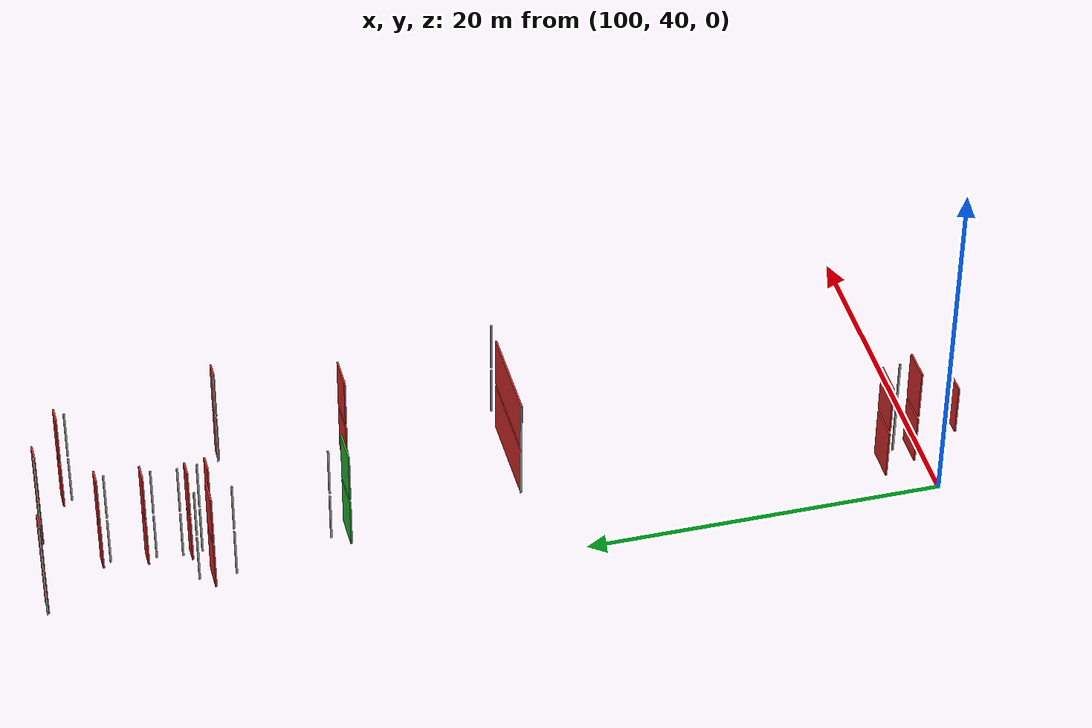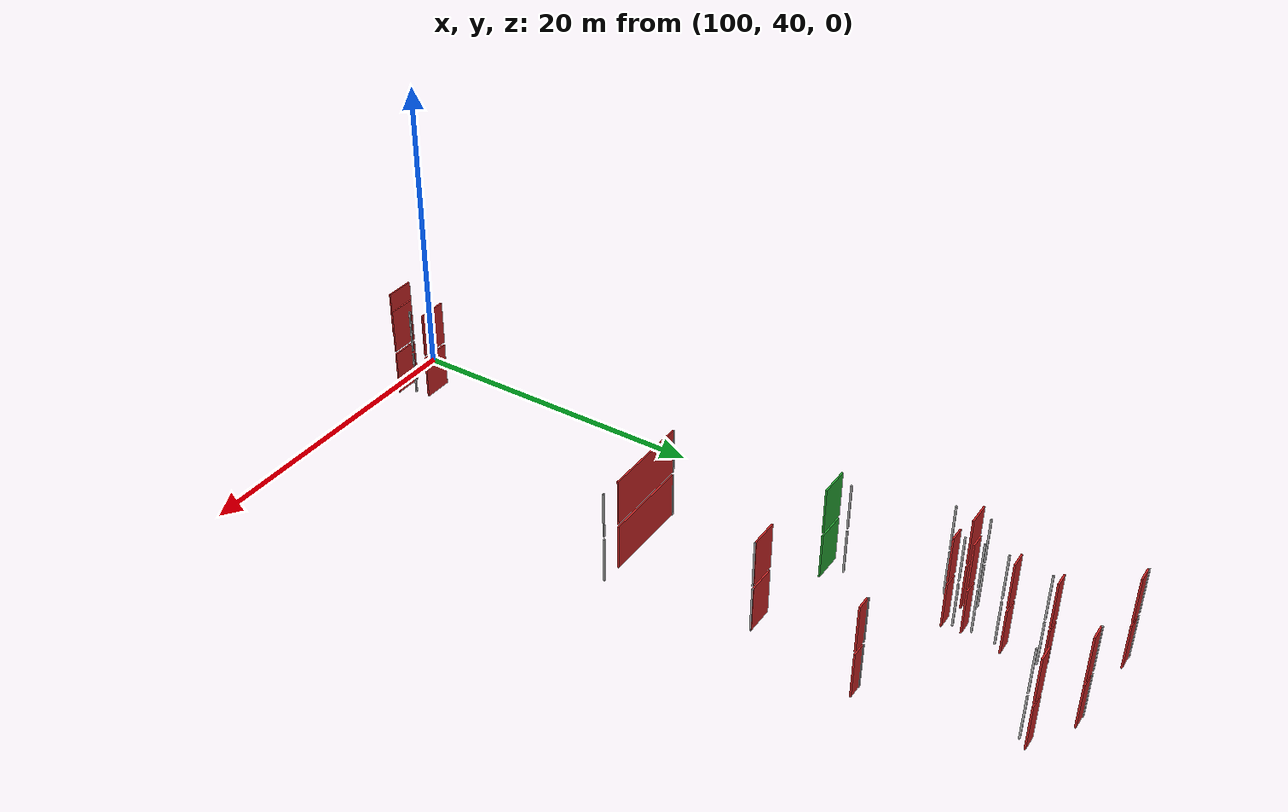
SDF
<sdf version="1.6">
 <world name="default">
  <model name="pivot_111.7_78.0_0.0">
   <static>true</static>
   <pose>111.71999999997206 77.97000000020489 1.5 0 0 0</pose>
   <link name="pivot_link">
    <visual name="pivot_visual"><geometry><box><size>0.1 0.1 3</size></box></geometry></visual>
   </link>
  </model>
  <model name="door_111.7_78.0_0.0">
   <static>false</static>
   <pose>112.1699999999837 77.92500000004657 1.5 0 0 0</pose>
   <link name="door_link">
    <gravity>false</gravity>
    <visual name="door_visual">
     <geometry><box><size>0.9044888059555555 0.1 3</size></box></geometry>
     <material>
      <script><uri>file://media/materials/scripts/gazebo.material</uri><name>Gazebo/Red</name></script>
     </material>
    </visual>
   </link>
  </model>
  <model name="pivot_104.8_80.1_0.0">
   <static>true</static>
   <pose>104.76000000000931 80.14999999990687 1.5 0 0 0</pose>
   <link name="pivot_link">
    <visual name="pivot_visual"><geometry><box><size>0.1 0.1 3</size></box></geometry></visual>
   </link>
  </model>
  <model name="door_104.8_80.1_0.0">
   <static>false</static>
   <pose>104.70999999999185 79.65999999991618 1.5 0 0 0</pose>
   <link name="door_link">
    <gravity>false</gravity>
    <visual name="door_visual">
     <geometry><box><size>0.9850888284669952 0.1 3</size></box></geometry>
     <material>
      <script><uri>file://media/materials/scripts/gazebo.material</uri><name>Gazebo/Red</name></script>
     </material>
    </visual>
   </link>
  </model>
  <model name="pivot_104.8_82.6_0.0">
   <static>true</static>
   <pose>104.82000000000698 82.62999999988824 1.5 0 0 0</pose>
   <link name="pivot_link">
    <visual name="pivot_visual"><geometry><box><size>0.1 0.1 3</size></box></geometry></visual>
   </link>
  </model>
  <model name="door_104.8_82.6_0.0">
   <static>false</static>
   <pose>104.86999999999534 83.12999999988824 1.5 0 0 0</pose>
   <link name="door_link">
    <gravity>false</gravity>
    <visual name="door_visual">
     <geometry><box><size>1.0049875621097721 0.1 3</size></box></geometry>
     <material>
      <script><uri>file://media/materials/scripts/gazebo.material</uri><name>Gazebo/Red</name></script>
     </material>
    </visual>
   </link>
  </model>
  <model name="pivot_105.1_85.1_0.0">
   <static>true</static>
   <pose>105.05999999999767 85.08999999985099 1.5 0 0 0</pose>
   <link name="pivot_link">
    <visual name="pivot_visual"><geometry><box><size>0.1 0.1 3</size></box></geometry></visual>
   </link>
  </model>
  <model name="door_105.1_85.1_0.0">
   <static>false</static>
   <pose>105.10999999998603 85.53499999991618 1.5 0 0 0</pose>
   <link name="door_link">
    <gravity>false</gravity>
    <visual name="door_visual">
     <geometry><box><size>0.895600357429266 0.1 3</size></box></geometry>
     <material>
      <script><uri>file://media/materials/scripts/gazebo.material</uri><name>Gazebo/Red</name></script>
     </material>
    </visual>
   </link>
  </model>
  <model name="pivot_110.5_86.3_0.0">
   <static>true</static>
   <pose>110.51000000000931 86.31999999983236 1.5 0 0 0</pose>
   <link name="pivot_link">
    <visual name="pivot_visual"><geometry><box><size>0.1 0.1 3</size></box></geometry></visual>
   </link>
  </model>
  <model name="door_110.5_86.3_0.0">
   <static>false</static>
   <pose>110.55999999999767 86.81499999994412 1.5 0 0 0</pose>
   <link name="door_link">
    <gravity>false</gravity>
    <visual name="door_visual">
     <geometry><box><size>0.9950376879485058 0.1 3</size></box></geometry>
     <material>
      <script><uri>file://media/materials/scripts/gazebo.material</uri><name>Gazebo/Red</name></script>
     </material>
    </visual>
   </link>
  </model>
  <model name="pivot_101.9_89.0_0.0">
   <static>true</static>
   <pose>101.88000000000466 88.99000000022352 1.5 0 0 0</pose>
   <link name="pivot_link">
    <visual name="pivot_visual"><geometry><box><size>0.1 0.1 3</size></box></geometry></visual>
   </link>
  </model>
  <model name="door_101.9_89.0_0.0">
   <static>false</static>
   <pose>102.38000000000466 88.94000000017695 1.5 0 0 0</pose>
   <link name="door_link">
    <gravity>false</gravity>
    <visual name="door_visual">
     <geometry><box><size>1.004987562121356 0.1 3</size></box></geometry>
     <material>
      <script><uri>file://media/materials/scripts/gazebo.material</uri><name>Gazebo/Red</name></script>
     </material>
    </visual>
   </link>
  </model>
  <model name="pivot_107.3_88.5_0.0">
   <static>true</static>
   <pose>107.28999999997905 88.45000000018626 1.5 0 0 0</pose>
   <link name="pivot_link">
    <visual name="pivot_visual"><geometry><box><size>0.1 0.1 3</size></box></geometry></visual>
   </link>
  </model>
  <model name="door_107.3_88.5_0.0">
   <static>false</static>
   <pose>107.78999999997905 88.4000000001397 1.5 0 0 0</pose>
   <link name="door_link">
    <gravity>false</gravity>
    <visual name="door_visual">
     <geometry><box><size>1.004987562121356 0.1 3</size></box></geometry>
     <material>
      <script><uri>file://media/materials/scripts/gazebo.material</uri><name>Gazebo/Red</name></script>
     </material>
    </visual>
   </link>
  </model>
  <model name="pivot_102.6_80.7_0.0">
   <static>true</static>
   <pose>102.59999999997672 80.70000000018626 1.5 0 0 0</pose>
   <link name="pivot_link">
    <visual name="pivot_visual"><geometry><box><size>0.1 0.1 3</size></box></geometry></visual>
   </link>
  </model>
  <model name="door_102.6_80.7_0.0">
   <static>false</static>
   <pose>102.52499999999418 79.9550000000745 1.5 0 0 0</pose>
   <link name="door_link">
    <gravity>false</gravity>
    <visual name="door_visual">
     <geometry><box><size>1.4975313020620318 0.1 3</size></box></geometry>
     <material>
      <script><uri>file://media/materials/scripts/gazebo.material</uri><name>Gazebo/Red</name></script>
     </material>
    </visual>
   </link>
  </model>
  <model name="pivot_102.6_78.7_0.0">
   <static>true</static>
   <pose>102.59999999997672 78.68999999994412 1.5 0 0 0</pose>
   <link name="pivot_link">
    <visual name="pivot_visual"><geometry><box><size>0.1 0.1 3</size></box></geometry></visual>
   </link>
  </model>
  <model name="pivot_104.7_81.2_0.0">
   <static>true</static>
   <pose>104.6699999999837 81.22000000020489 1.5 0 0 0</pose>
   <link name="pivot_link">
    <visual name="pivot_visual"><geometry><box><size>0.1 0.1 3</size></box></geometry></visual>
   </link>
  </model>
  <model name="door_104.7_81.2_0.0">
   <static>false</static>
   <pose>104.625 80.77000000001863 1.5 0 0 0</pose>
   <link name="door_link">
    <gravity>false</gravity>
    <visual name="door_visual">
     <geometry><box><size>0.904488806268317 0.1 3</size></box></geometry>
     <material>
      <script><uri>file://media/materials/scripts/gazebo.material</uri><name>Gazebo/Red</name></script>
     </material>
    </visual>
   </link>
  </model>
  <model name="pivot_111.1_71.2_0.0">
   <static>true</static>
   <pose>111.14000000001397 71.16000000014901 1.5 0 0 0</pose>
   <link name="pivot_link">
    <visual name="pivot_visual"><geometry><box><size>0.1 0.1 3</size></box></geometry></visual>
   </link>
  </model>
  <model name="door_111.1_71.2_0.0">
   <static>false</static>
   <pose>110.23500000001513 71.17000000015832 1.5 0 0 0</pose>
   <link name="door_link">
    <gravity>false</gravity>
    <visual name="door_visual">
     <geometry><box><size>1.810110493862824 0.1 3</size></box></geometry>
     <material>
      <script><uri>file://media/materials/scripts/gazebo.material</uri><name>Gazebo/Red</name></script>
     </material>
    </visual>
   </link>
  </model>
  <model name="pivot_104.1_73.2_0.0">
   <static>true</static>
   <pose>104.10999999998603 73.20000000018626 1.5 0 0 0</pose>
   <link name="pivot_link">
    <visual name="pivot_visual"><geometry><box><size>0.1 0.1 3</size></box></geometry></visual>
   </link>
  </model>
  <model name="door_104.1_73.2_0.0">
   <static>false</static>
   <pose>104.28999999992084 72.24500000034459 1.5 0 0 0</pose>
   <link name="door_link">
    <gravity>false</gravity>
    <visual name="door_visual">
     <geometry><box><size>1.9436306230085285 0.1 3</size></box></geometry>
     <material>
      <script><uri>file://media/materials/scripts/gazebo.material</uri><name>Gazebo/Green</name></script>
     </material>
    </visual>
   </link>
  </model>
  <model name="pivot_112.2_62.3_0.0">
   <static>true</static>
   <pose>112.15000000002328 62.27999999979511 1.5 0 0 0</pose>
   <link name="pivot_link">
    <visual name="pivot_visual"><geometry><box><size>0.1 0.1 3</size></box></geometry></visual>
   </link>
  </model>
  <model name="pivot_105.1_62.4_0.0">
   <static>true</static>
   <pose>105.14000000001397 62.37999999988824 1.5 0 0 0</pose>
   <link name="pivot_link">
    <visual name="pivot_visual"><geometry><box><size>0.1 0.1 3</size></box></geometry></visual>
   </link>
  </model>
  <model name="door_105.1_62.4_0.0">
   <static>false</static>
   <pose>107.99499999999534 62.34499999997206 1.5 0 0 0</pose>
   <link name="door_link">
    <gravity>false</gravity>
    <visual name="door_visual">
     <geometry><box><size>5.710429055644689 0.1 3</size></box></geometry>
     <material>
      <script><uri>file://media/materials/scripts/gazebo.material</uri><name>Gazebo/Red</name></script>
     </material>
    </visual>
   </link>
  </model>
  <model name="door_101.6_42.6_0.0">
   <static>false</static>
   <pose>102.60500000001048 42.48999999999069 1.5 0 0 0</pose>
   <link name="door_link">
    <gravity>false</gravity>
    <visual name="door_visual">
     <geometry><box><size>1.9366207682124321 0.1 3</size></box></geometry>
     <material>
      <script><uri>file://media/materials/scripts/gazebo.material</uri><name>Gazebo/Red</name></script>
     </material>
    </visual>
   </link>
  </model>
  <model name="pivot_103.6_41.5_0.0">
   <static>true</static>
   <pose>103.55999999999767 41.47999999998137 1.5 0 0 0</pose>
   <link name="pivot_link">
    <visual name="pivot_visual"><geometry><box><size>0.1 0.1 3</size></box></geometry></visual>
   </link>
  </model>
  <model name="door_103.6_41.5_0.0">
   <static>false</static>
   <pose>103.3299999999872 40.59000000008382 1.5 0 0 0</pose>
   <link name="door_link">
    <gravity>false</gravity>
    <visual name="door_visual">
     <geometry><box><size>1.8384776308918926 0.1 3</size></box></geometry>
     <material>
      <script><uri>file://media/materials/scripts/gazebo.material</uri><name>Gazebo/Red</name></script>
     </material>
    </visual>
   </link>
  </model>
  <model name="pivot_111.7_78.0_3.2">
   <static>true</static>
   <pose>111.71999999997206 77.97000000020489 4.7 0 0 0</pose>
   <link name="pivot_link">
    <visual name="pivot_visual"><geometry><box><size>0.1 0.1 3</size></box></geometry></visual>
   </link>
  </model>
  <model name="door_111.7_78.0_3.2">
   <static>false</static>
   <pose>112.1699999999837 77.92500000004657 4.7 0 0 0</pose>
   <link name="door_link">
    <gravity>false</gravity>
    <visual name="door_visual">
     <geometry><box><size>0.9044888059555555 0.1 3</size></box></geometry>
     <material>
      <script><uri>file://media/materials/scripts/gazebo.material</uri><name>Gazebo/Red</name></script>
     </material>
    </visual>
   </link>
  </model>
  <model name="pivot_104.8_80.1_3.2">
   <static>true</static>
   <pose>104.76000000000931 80.14999999990687 4.7 0 0 0</pose>
   <link name="pivot_link">
    <visual name="pivot_visual"><geometry><box><size>0.1 0.1 3</size></box></geometry></visual>
   </link>
  </model>
  <model name="door_104.8_80.1_3.2">
   <static>false</static>
   <pose>104.70999999999185 79.65999999991618 4.7 0 0 0</pose>
   <link name="door_link">
    <gravity>false</gravity>
    <visual name="door_visual">
     <geometry><box><size>0.9850888284669952 0.1 3</size></box></geometry>
     <material>
      <script><uri>file://media/materials/scripts/gazebo.material</uri><name>Gazebo/Red</name></script>
     </material>
    </visual>
   </link>
  </model>
  <model name="pivot_104.8_82.6_3.2">
   <static>true</static>
   <pose>104.82000000000698 82.62999999988824 4.7 0 0 0</pose>
   <link name="pivot_link">
    <visual name="pivot_visual"><geometry><box><size>0.1 0.1 3</size></box></geometry></visual>
   </link>
  </model>
  <model name="door_104.8_82.6_3.2">
   <static>false</static>
   <pose>104.86999999999534 83.12999999988824 4.7 0 0 0</pose>
   <link name="door_link">
    <gravity>false</gravity>
    <visual name="door_visual">
     <geometry><box><size>1.0049875621097721 0.1 3</size></box></geometry>
     <material>
      <script><uri>file://media/materials/scripts/gazebo.material</uri><name>Gazebo/Red</name></script>
     </material>
    </visual>
   </link>
  </model>
  <model name="pivot_105.1_85.1_3.2">
   <static>true</static>
   <pose>105.05999999999767 85.08999999985099 4.7 0 0 0</pose>
   <link name="pivot_link">
    <visual name="pivot_visual"><geometry><box><size>0.1 0.1 3</size></box></geometry></visual>
   </link>
  </model>
  <model name="door_105.1_85.1_3.2">
   <static>false</static>
   <pose>105.10999999998603 85.53499999991618 4.7 0 0 0</pose>
   <link name="door_link">
    <gravity>false</gravity>
    <visual name="door_visual">
     <geometry><box><size>0.895600357429266 0.1 3</size></box></geometry>
     <material>
      <script><uri>file://media/materials/scripts/gazebo.material</uri><name>Gazebo/Red</name></script>
     </material>
    </visual>
   </link>
  </model>
  <model name="pivot_110.5_86.3_3.2">
   <static>true</static>
   <pose>110.51000000000931 86.31999999983236 4.7 0 0 0</pose>
   <link name="pivot_link">
    <visual name="pivot_visual"><geometry><box><size>0.1 0.1 3</size></box></geometry></visual>
   </link>
  </model>
  <model name="door_110.5_86.3_3.2">
   <static>false</static>
   <pose>110.55999999999767 86.81499999994412 4.7 0 0 0</pose>
   <link name="door_link">
    <gravity>false</gravity>
    <visual name="door_visual">
     <geometry><box><size>0.9950376879485058 0.1 3</size></box></geometry>
     <material>
      <script><uri>file://media/materials/scripts/gazebo.material</uri><name>Gazebo/Red</name></script>
     </material>
    </visual>
   </link>
  </model>
  <model name="pivot_101.9_89.0_3.2">
   <static>true</static>
   <pose>101.88000000000466 88.99000000022352 4.7 0 0 0</pose>
   <link name="pivot_link">
    <visual name="pivot_visual"><geometry><box><size>0.1 0.1 3</size></box></geometry></visual>
   </link>
  </model>
  <model name="door_101.9_89.0_3.2">
   <static>false</static>
   <pose>102.38000000000466 88.94000000017695 4.7 0 0 0</pose>
   <link name="door_link">
    <gravity>false</gravity>
    <visual name="door_visual">
     <geometry><box><size>1.004987562121356 0.1 3</size></box></geometry>
     <material>
      <script><uri>file://media/materials/scripts/gazebo.material</uri><name>Gazebo/Red</name></script>
     </material>
    </visual>
   </link>
  </model>
  <model name="pivot_107.3_88.5_3.2">
   <static>true</static>
   <pose>107.28999999997905 88.45000000018626 4.7 0 0 0</pose>
   <link name="pivot_link">
    <visual name="pivot_visual"><geometry><box><size>0.1 0.1 3</size></box></geometry></visual>
   </link>
  </model>
  <model name="door_107.3_88.5_3.2">
   <static>false</static>
   <pose>107.78999999997905 88.4000000001397 4.7 0 0 0</pose>
   <link name="door_link">
    <gravity>false</gravity>
    <visual name="door_visual">
     <geometry><box><size>1.004987562121356 0.1 3</size></box></geometry>
     <material>
      <script><uri>file://media/materials/scripts/gazebo.material</uri><name>Gazebo/Red</name></script>
     </material>
    </visual>
   </link>
  </model>
  <model name="pivot_102.6_80.7_3.2">
   <static>true</static>
   <pose>102.59999999997672 80.70000000018626 4.7 0 0 0</pose>
   <link name="pivot_link">
    <visual name="pivot_visual"><geometry><box><size>0.1 0.1 3</size></box></geometry></visual>
   </link>
  </model>
  <model name="door_102.6_80.7_3.2">
   <static>false</static>
   <pose>102.52499999999418 79.9550000000745 4.7 0 0 0</pose>
   <link name="door_link">
    <gravity>false</gravity>
    <visual name="door_visual">
     <geometry><box><size>1.4975313020620318 0.1 3</size></box></geometry>
     <material>
      <script><uri>file://media/materials/scripts/gazebo.material</uri><name>Gazebo/Red</name></script>
     </material>
    </visual>
   </link>
  </model>
  <model name="pivot_102.6_78.7_3.2">
   <static>true</static>
   <pose>102.59999999997672 78.68999999994412 4.7 0 0 0</pose>
   <link name="pivot_link">
    <visual name="pivot_visual"><geometry><box><size>0.1 0.1 3</size></box></geometry></visual>
   </link>
  </model>
  <model name="pivot_104.7_81.2_3.2">
   <static>true</static>
   <pose>104.6699999999837 81.22000000020489 4.7 0 0 0</pose>
   <link name="pivot_link">
    <visual name="pivot_visual"><geometry><box><size>0.1 0.1 3</size></box></geometry></visual>
   </link>
  </model>
  <model name="door_104.7_81.2_3.2">
   <static>false</static>
   <pose>104.625 80.77000000001863 4.7 0 0 0</pose>
   <link name="door_link">
    <gravity>false</gravity>
    <visual name="door_visual">
     <geometry><box><size>0.904488806268317 0.1 3</size></box></geometry>
     <material>
      <script><uri>file://media/materials/scripts/gazebo.material</uri><name>Gazebo/Red</name></script>
     </material>
    </visual>
   </link>
  </model>
  <model name="pivot_111.1_71.2_3.2">
   <static>true</static>
   <pose>111.14000000001397 71.16000000014901 4.7 0 0 0</pose>
   <link name="pivot_link">
    <visual name="pivot_visual"><geometry><box><size>0.1 0.1 3</size></box></geometry></visual>
   </link>
  </model>
  <model name="door_111.1_71.2_3.2">
   <static>false</static>
   <pose>110.23500000001513 71.17000000015832 4.7 0 0 0</pose>
   <link name="door_link">
    <gravity>false</gravity>
    <visual name="door_visual">
     <geometry><box><size>1.810110493862824 0.1 3</size></box></geometry>
     <material>
      <script><uri>file://media/materials/scripts/gazebo.material</uri><name>Gazebo/Red</name></script>
     </material>
    </visual>
   </link>
  </model>
  <model name="pivot_104.1_73.2_3.2">
   <static>true</static>
   <pose>104.10999999998603 73.20000000018626 4.7 0 0 0</pose>
   <link name="pivot_link">
    <visual name="pivot_visual"><geometry><box><size>0.1 0.1 3</size></box></geometry></visual>
   </link>
  </model>
  <model name="door_104.1_73.2_3.2">
   <static>false</static>
   <pose>104.28999999992084 72.24500000034459 4.7 0 0 0</pose>
   <link name="door_link">
    <gravity>false</gravity>
    <visual name="door_visual">
     <geometry><box><size>1.9436306230085285 0.1 3</size></box></geometry>
     <material>
      <script><uri>file://media/materials/scripts/gazebo.material</uri><name>Gazebo/Green</name></script>
     </material>
    </visual>
   </link>
  </model>
  <model name="pivot_112.2_62.3_3.2">
   <static>true</static>
   <pose>112.15000000002328 62.27999999979511 4.7 0 0 0</pose>
   <link name="pivot_link">
    <visual name="pivot_visual"><geometry><box><size>0.1 0.1 3</size></box></geometry></visual>
   </link>
  </model>
  <model name="pivot_105.1_62.4_3.2">
   <static>true</static>
   <pose>105.14000000001397 62.37999999988824 4.7 0 0 0</pose>
   <link name="pivot_link">
    <visual name="pivot_visual"><geometry><box><size>0.1 0.1 3</size></box></geometry></visual>
   </link>
  </model>
  <model name="door_105.1_62.4_3.2">
   <static>false</static>
   <pose>107.99499999999534 62.34499999997206 4.7 0 0 0</pose>
   <link name="door_link">
    <gravity>false</gravity>
    <visual name="door_visual">
     <geometry><box><size>5.710429055644689 0.1 3</size></box></geometry>
     <material>
      <script><uri>file://media/materials/scripts/gazebo.material</uri><name>Gazebo/Red</name></script>
     </material>
    </visual>
   </link>
  </model>
  <model name="door_101.6_42.6_3.2">
   <static>false</static>
   <pose>102.60500000001048 42.48999999999069 4.7 0 0 0</pose>
   <link name="door_link">
    <gravity>false</gravity>
    <visual name="door_visual">
     <geometry><box><size>1.9366207682124321 0.1 3</size></box></geometry>
     <material>
      <script><uri>file://media/materials/scripts/gazebo.material</uri><name>Gazebo/Red</name></script>
     </material>
    </visual>
   </link>
  </model>
  <model name="door_100.8_39.5_3.2">
   <static>false</static>
   <pose>101.71000000002095 39.06499999994412 4.7 0 0 0</pose>
   <link name="door_link">
    <gravity>false</gravity>
    <visual name="door_visual">
     <geometry><box><size>1.9291708063548034 0.1 3</size></box></geometry>
     <material>
      <script><uri>file://media/materials/scripts/gazebo.material</uri><name>Gazebo/Red</name></script>
     </material>
    </visual>
   </link>
  </model>
  <model name="pivot_103.6_41.5_3.2">
   <static>true</static>
   <pose>103.55999999999767 41.47999999998137 4.7 0 0 0</pose>
   <link name="pivot_link">
    <visual name="pivot_visual"><geometry><box><size>0.1 0.1 3</size></box></geometry></visual>
   </link>
  </model>
  <model name="door_103.6_41.5_3.2">
   <static>false</static>
   <pose>103.3299999999872 40.59000000008382 4.7 0 0 0</pose>
   <link name="door_link">
    <gravity>false</gravity>
    <visual name="door_visual">
     <geometry><box><size>1.8384776308918926 0.1 3</size></box></geometry>
     <material>
      <script><uri>file://media/materials/scripts/gazebo.material</uri><name>Gazebo/Red</name></script>
     </material>
    </visual>
   </link>
  </model>
 </world>
</sdf>
